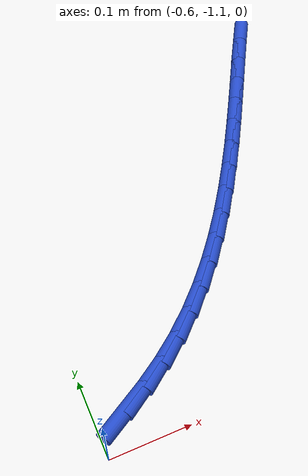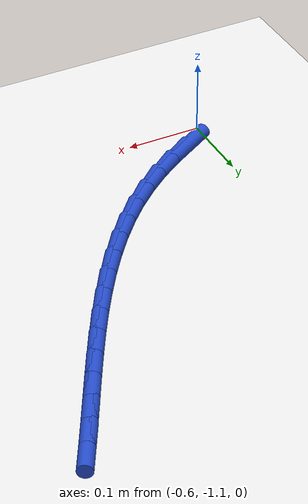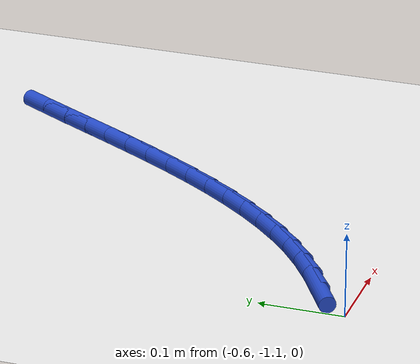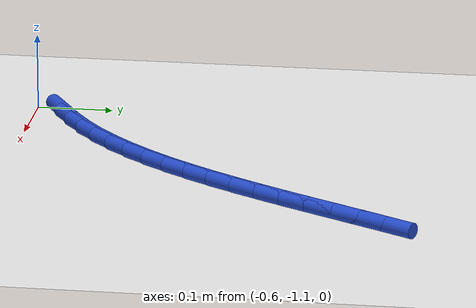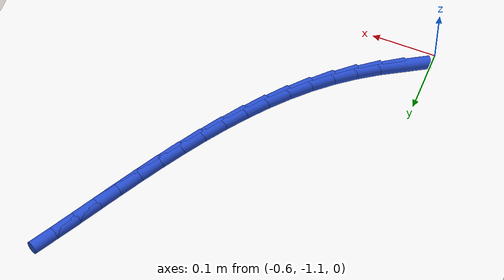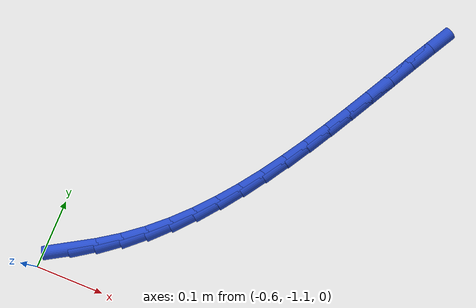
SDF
<sdf version="1.6">
 <world name="default">
  <model name="ground_plane">
   <static>1</static>
   <link name="link">
    <collision name="collision">
     <geometry><plane><normal>0 0 1</normal><size>100 100</size></plane></geometry>
     <surface><friction><ode><mu>100</mu><mu2>50</mu2></ode></friction></surface>
    </collision>
    <visual name="visual">
     <cast_shadows>0</cast_shadows>
     <geometry><plane><normal>0 0 1</normal><size>100 100</size></plane></geometry>
     <material>
      <script><uri>file://media/materials/scripts/gazebo.material</uri><name>Gazebo/WhiteGlow</name></script>
     </material>
    </visual>
   </link>
  </model>
  <model name="line">
   <link name="link_167">
    <pose>-0.5638093649469096 -1.0589203561738925 0.01 0 1.57 0.5328946368526735</pose>
    <collision name="collision">
     <geometry><cylinder><radius>0.01</radius><length>0.08</length></cylinder></geometry>
    </collision>
    <visual name="visual">
     <material>
      <script><name>Gazebo/Blue</name><uri>file://media/materials/scripts/gazebo.material</uri></script>
     </material>
     <geometry><cylinder><radius>0.01</radius><length>0.08</length></cylinder></geometry>
    </visual>
   </link>
   <link name="link_168">
    <pose>-0.5322006133166552 -1.040277135426634 0.01 0 1.57 0.5907076472159117</pose>
    <collision name="collision">
     <geometry><cylinder><radius>0.01</radius><length>0.08</length></cylinder></geometry>
    </collision>
    <visual name="visual">
     <material>
      <script><name>Gazebo/Blue</name><uri>file://media/materials/scripts/gazebo.material</uri></script>
     </material>
     <geometry><cylinder><radius>0.01</radius><length>0.08</length></cylinder></geometry>
    </visual>
   </link>
   <link name="link_169">
    <pose>-0.5019891670617697 -1.0200179129659026 0.01 0 1.57 0.6604156029650692</pose>
    <collision name="collision">
     <geometry><cylinder><radius>0.01</radius><length>0.08</length></cylinder></geometry>
    </collision>
    <visual name="visual">
     <material>
      <script><name>Gazebo/Blue</name><uri>file://media/materials/scripts/gazebo.material</uri></script>
     </material>
     <geometry><cylinder><radius>0.01</radius><length>0.08</length></cylinder></geometry>
    </visual>
   </link>
   <link name="link_170">
    <pose>-0.4733794473169219 -0.9977947105040377 0.01 0 1.57 0.7296173312249062</pose>
    <collision name="collision">
     <geometry><cylinder><radius>0.01</radius><length>0.08</length></cylinder></geometry>
    </collision>
    <visual name="visual">
     <material>
      <script><name>Gazebo/Blue</name><uri>file://media/materials/scripts/gazebo.material</uri></script>
     </material>
     <geometry><cylinder><radius>0.01</radius><length>0.08</length></cylinder></geometry>
    </visual>
   </link>
   <link name="link_171">
    <pose>-0.4463446498513741 -0.9736194207233337 0.01 0 1.57 0.7922866057399419</pose>
    <collision name="collision">
     <geometry><cylinder><radius>0.01</radius><length>0.08</length></cylinder></geometry>
    </collision>
    <visual name="visual">
     <material>
      <script><name>Gazebo/Blue</name><uri>file://media/materials/scripts/gazebo.material</uri></script>
     </material>
     <geometry><cylinder><radius>0.01</radius><length>0.08</length></cylinder></geometry>
    </visual>
   </link>
   <link name="link_172">
    <pose>-0.42075088427704554 -0.9476706014089563 0.01 0 1.57 0.8481301244819377</pose>
    <collision name="collision">
     <geometry><cylinder><radius>0.01</radius><length>0.08</length></cylinder></geometry>
    </collision>
    <visual name="visual">
     <material>
      <script><name>Gazebo/Blue</name><uri>file://media/materials/scripts/gazebo.material</uri></script>
     </material>
     <geometry><cylinder><radius>0.01</radius><length>0.08</length></cylinder></geometry>
    </visual>
   </link>
   <link name="link_173">
    <pose>-0.39646367657603704 -0.9201277186868497 0.01 0 1.57 0.8971272621102455</pose>
    <collision name="collision">
     <geometry><cylinder><radius>0.01</radius><length>0.08</length></cylinder></geometry>
    </collision>
    <visual name="visual">
     <material>
      <script><name>Gazebo/Blue</name><uri>file://media/materials/scripts/gazebo.material</uri></script>
     </material>
     <geometry><cylinder><radius>0.01</radius><length>0.08</length></cylinder></geometry>
    </visual>
   </link>
   <link name="link_174">
    <pose>-0.37334855273044965 -0.8911702386829596 0.01 0 1.57 0.9394215820153036</pose>
    <collision name="collision">
     <geometry><cylinder><radius>0.01</radius><length>0.08</length></cylinder></geometry>
    </collision>
    <visual name="visual">
     <material>
      <script><name>Gazebo/Blue</name><uri>file://media/materials/scripts/gazebo.material</uri></script>
     </material>
     <geometry><cylinder><radius>0.01</radius><length>0.08</length></cylinder></geometry>
    </visual>
   </link>
   <link name="link_175">
    <pose>-0.3512710387223843 -0.8609776275232306 0.01 0 1.57 0.9752506585516675</pose>
    <collision name="collision">
     <geometry><cylinder><radius>0.01</radius><length>0.08</length></cylinder></geometry>
    </collision>
    <visual name="visual">
     <material>
      <script><name>Gazebo/Blue</name><uri>file://media/materials/scripts/gazebo.material</uri></script>
     </material>
     <geometry><cylinder><radius>0.01</radius><length>0.08</length></cylinder></geometry>
    </visual>
   </link>
   <link name="link_176">
    <pose>-0.330096660533942 -0.8297293513336081 0.01 0 1.57 1.0048902404735465</pose>
    <collision name="collision">
     <geometry><cylinder><radius>0.01</radius><length>0.08</length></cylinder></geometry>
    </collision>
    <visual name="visual">
     <material>
      <script><name>Gazebo/Blue</name><uri>file://media/materials/scripts/gazebo.material</uri></script>
     </material>
     <geometry><cylinder><radius>0.01</radius><length>0.08</length></cylinder></geometry>
    </visual>
   </link>
   <link name="link_177">
    <pose>-0.30969094414722365 -0.7976048762400372 0.01 0 1.57 1.0286132516934003</pose>
    <collision name="collision">
     <geometry><cylinder><radius>0.01</radius><length>0.08</length></cylinder></geometry>
    </collision>
    <visual name="visual">
     <material>
      <script><name>Gazebo/Blue</name><uri>file://media/materials/scripts/gazebo.material</uri></script>
     </material>
     <geometry><cylinder><radius>0.01</radius><length>0.08</length></cylinder></geometry>
    </visual>
   </link>
   <link name="link_178">
    <pose>-0.2899194155443302 -0.7647836683684625 0.01 0 1.57 1.0466614540223975</pose>
    <collision name="collision">
     <geometry><cylinder><radius>0.01</radius><length>0.08</length></cylinder></geometry>
    </collision>
    <visual name="visual">
     <material>
      <script><name>Gazebo/Blue</name><uri>file://media/materials/scripts/gazebo.material</uri></script>
     </material>
     <geometry><cylinder><radius>0.01</radius><length>0.08</length></cylinder></geometry>
    </visual>
   </link>
   <link name="link_179">
    <pose>-0.27064760070736255 -0.7314451938448292 0.01 0 1.57 1.0592267404461373</pose>
    <collision name="collision">
     <geometry><cylinder><radius>0.01</radius><length>0.08</length></cylinder></geometry>
    </collision>
    <visual name="visual">
     <material>
      <script><name>Gazebo/Blue</name><uri>file://media/materials/scripts/gazebo.material</uri></script>
     </material>
     <geometry><cylinder><radius>0.01</radius><length>0.08</length></cylinder></geometry>
    </visual>
   </link>
   <link name="link_180">
    <pose>-0.25174102561842177 -0.6977689187950824 0.01 0 1.57 1.066439180139393</pose>
    <collision name="collision">
     <geometry><cylinder><radius>0.01</radius><length>0.08</length></cylinder></geometry>
    </collision>
    <visual name="visual">
     <material>
      <script><name>Gazebo/Blue</name><uri>file://media/materials/scripts/gazebo.material</uri></script>
     </material>
     <geometry><cylinder><radius>0.01</radius><length>0.08</length></cylinder></geometry>
    </visual>
   </link>
   <link name="link_181">
    <pose>-0.23306521625960874 -0.6639343093451671 0.01 0 1.57 1.0683595251687557</pose>
    <collision name="collision">
     <geometry><cylinder><radius>0.01</radius><length>0.08</length></cylinder></geometry>
    </collision>
    <visual name="visual">
     <material>
      <script><name>Gazebo/Blue</name><uri>file://media/materials/scripts/gazebo.material</uri></script>
     </material>
     <geometry><cylinder><radius>0.01</radius><length>0.08</length></cylinder></geometry>
    </visual>
   </link>
   <link name="link_182">
    <pose>-0.21448569861302447 -0.6301208316210284 0.01 0 1.57 1.06497460166377</pose>
    <collision name="collision">
     <geometry><cylinder><radius>0.01</radius><length>0.08</length></cylinder></geometry>
    </collision>
    <visual name="visual">
     <material>
      <script><name>Gazebo/Blue</name><uri>file://media/materials/scripts/gazebo.material</uri></script>
     </material>
     <geometry><cylinder><radius>0.01</radius><length>0.08</length></cylinder></geometry>
    </visual>
   </link>
   <link name="link_183">
    <pose>-0.19586799866076987 -0.5965079517486114 0.01 0 1.57 1.057031145491834</pose>
    <collision name="collision">
     <geometry><cylinder><radius>0.01</radius><length>0.08</length></cylinder></geometry>
    </collision>
    <visual name="visual">
     <material>
      <script><name>Gazebo/Blue</name><uri>file://media/materials/scripts/gazebo.material</uri></script>
     </material>
     <geometry><cylinder><radius>0.01</radius><length>0.08</length></cylinder></geometry>
    </visual>
   </link>
  </model>
 </world>
</sdf>
